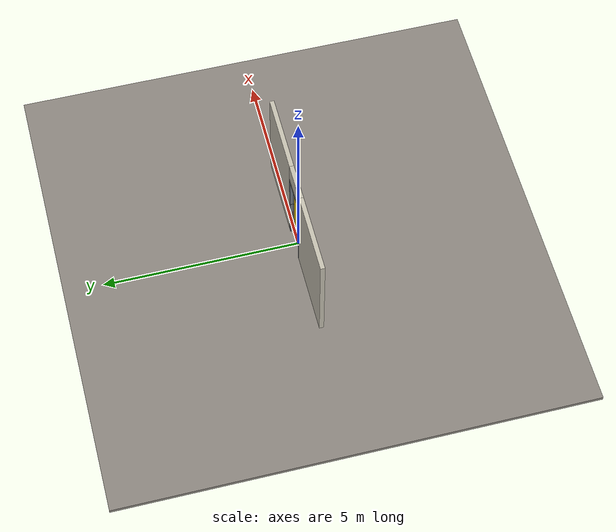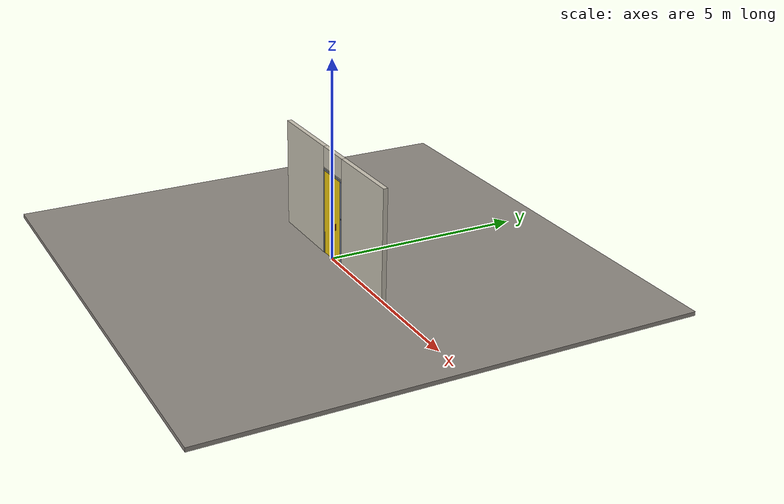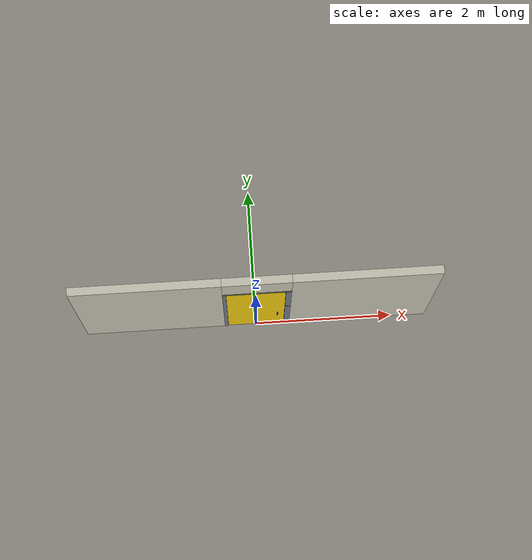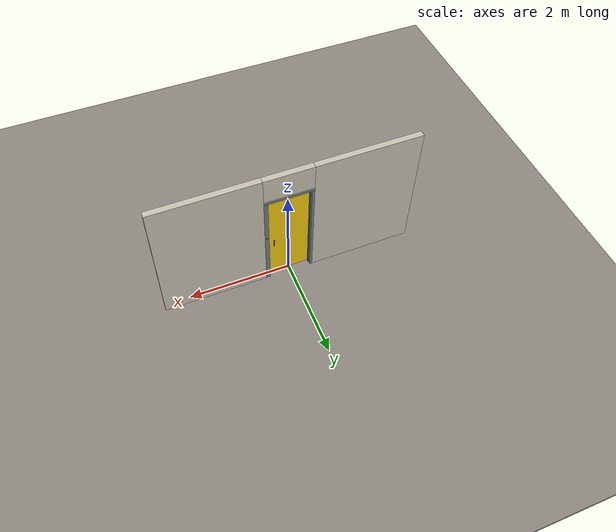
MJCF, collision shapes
<?xml version="1.0" ?>
<mujoco model="db0012_swing_single_minimal">
  <compiler angle="radian" meshdir="../../hardware" texturedir="../../textures" autolimits="true" inertiafromgeom="false"/>
  <option timestep="0.002" integrator="implicitfast" cone="elliptic" impratio="10" noslip_iterations="3">
    <flag multiccd="enable"/>
  </option>
  <size memory="16M"/>
  <default>
    <geom condim="4" solref="0.005 1" solimp="0.95 0.99 0.001"/>
    <joint solreflimit="0.005 1" solimplimit="0.95 0.99 0.001"/>
    <tendon solreflimit="0.005 1"/>
    <equality solref="0.002 1"/>
  </default>
  <visual>
    <headlight ambient="0.4 0.4 0.4" diffuse="0.7 0.7 0.7" specular="0.2 0.2 0.2"/>
    <quality shadowsize="4096"/>
    <map znear="0.01" zfar="60"/>
  </visual>
  <asset>
    <mesh name="pull_1e5d69a91a" file="pull_1e5d69a91a.obj"/>
    <material name="mat_floor" rgba="0.55 0.53 0.5 1" specular="0.2" shininess="0.15" reflectance="0"/>
    <material name="mat_wall" rgba="0.78 0.76 0.7 1" specular="0.2" shininess="0.1" reflectance="0"/>
    <material name="mat_leaf" rgba="0.95 0.8 0.05 1" specular="0.23" shininess="0.44" reflectance="0.02"/>
    <material name="mat_leaf_louver" rgba="0.807 0.68 0.043 1" specular="0.2" shininess="0.4" reflectance="0"/>
    <material name="mat_hinge" rgba="0.45 0.3 0.22 1" specular="0.5" shininess="0.1" reflectance="0.2"/>
    <material name="mat_op_stainless" rgba="0.75 0.76 0.77 1" specular="0.8" shininess="0.65" reflectance="0.4"/>
    <material name="mat_op_brass" rgba="0.85 0.66 0.3 1" specular="0.8" shininess="0.75" reflectance="0.4"/>
    <material name="mat_frame" rgba="0.45 0.48 0.52 1" specular="0.32" shininess="0.6" reflectance="0.08"/>
    <material name="mat_seal" rgba="0.1 0.1 0.1 1" specular="0.2" shininess="0.1" reflectance="0"/>
    <material name="mat_closer" rgba="0.22 0.17 0.13 1" specular="0.8" shininess="0.6" reflectance="0.4"/>
    <material name="mat_vent" rgba="0.8 0.81 0.83 1" specular="0.8" shininess="0.6" reflectance="0.4"/>
    <material name="mat_placard" rgba="0.95 0.75 0.05 1" specular="0.2" shininess="0.5" reflectance="0"/>
    <texture name="skybox" type="skybox" builtin="gradient" rgb1="0.6 0.7 0.85" rgb2="0.9 0.92 0.95" width="256" height="256"/>
  </asset>
  <worldbody>
    <light name="sun" pos="1.5 -2.5 4" dir="-0.3 0.5 -0.8" directional="true" diffuse="0.8 0.8 0.8" specular="0.3 0.3 0.3" castshadow="true"/>
    <light name="fill" pos="-1.5 2.5 3" dir="0.3 -0.5 -0.7" directional="true" diffuse="0.35 0.35 0.4" castshadow="false"/>
    <camera name="robot_view" pos="0 -2.590313 1.812087" xyaxes="1 0 0 0 0.26963 0.962964" fovy="52"/>
    <camera name="far_view" pos="0 2.685312 1.812087" xyaxes="-1 0 0 0 -0.26963 0.962964" fovy="52"/>
    <camera name="iso" pos="2.004737 -2.168262 2.234138" xyaxes="0.741536 0.670913 0 -0.242917 0.268487 0.932151" fovy="46"/>
    <camera name="detail_handle" pos="0.4815 -0.863 1.245" xyaxes="0.97561 0.219512 0 -0.070934 0.315262 0.94635" fovy="38"/>
    <geom name="floor" type="box" size="6 6 0.05" pos="0 0 -0.05" material="mat_floor" group="0" contype="1" conaffinity="1" friction="0.8 0.005 0.0001" density="2400"/>
    <geom name="wall_left" type="box" size="1.02025 0.0575 1.3735" pos="-1.47975 0.0475 1.3735" material="mat_wall" group="0" contype="1" conaffinity="1" friction="0.6 0.005 0.0001" density="800"/>
    <geom name="wall_right" type="box" size="1.00525 0.0575 1.3735" pos="1.49475 0.0475 1.3735" material="mat_wall" group="0" contype="1" conaffinity="1" friction="0.6 0.005 0.0001" density="800"/>
    <geom name="wall_header" type="box" size="0.4745 0.0575 0.26" pos="0.015 0.0475 2.487" material="mat_wall" group="0" contype="1" conaffinity="1" friction="0.6 0.005 0.0001" density="800"/>
    <geom name="jamb_hinge" type="box" size="0.025 0.0575 1.0735" pos="-0.4345 0.0475 1.0735" material="mat_frame" group="0" contype="1" conaffinity="1" friction="0.6 0.005 0.0001" density="300"/>
    <geom name="strike_1215_wall_n" type="box" size="0.04 0.041 0.01" pos="0.4495 0.064 1.215" material="mat_frame" group="0" contype="1" conaffinity="1" friction="0.6 0.005 0.0001" density="300"/>
    <geom name="strike_1215_wall_p" type="box" size="0.04 0.0085 0.01" pos="0.4495 -0.0015 1.215" material="mat_frame" group="0" contype="1" conaffinity="1" friction="0.6 0.005 0.0001" density="300"/>
    <geom name="strike_1215_back" type="box" size="0.019 0.008 0.01" pos="0.4705 0.015 1.215" material="mat_frame" group="0" contype="1" conaffinity="1" friction="0.6 0.005 0.0001" density="300"/>
    <geom name="jamb_strike_0" type="box" size="0.04 0.0575 0.6025" pos="0.4495 0.0475 0.6025" material="mat_frame" group="0" contype="1" conaffinity="1" friction="0.6 0.005 0.0001" density="300"/>
    <geom name="jamb_strike_1" type="box" size="0.04 0.0575 0.461" pos="0.4495 0.0475 1.686" material="mat_frame" group="0" contype="1" conaffinity="1" friction="0.6 0.005 0.0001" density="300"/>
    <geom name="jamb_head" type="box" size="0.4745 0.0575 0.025" pos="0.015 0.0475 2.172" material="mat_frame" group="0" contype="1" conaffinity="1" friction="0.6 0.005 0.0001" density="300"/>
    <geom name="head_stud" type="box" size="0.4745 0.0575 0.015" pos="0.015 0.0475 2.212" material="mat_wall" group="0" contype="1" conaffinity="1" friction="0.6 0.005 0.0001" density="500"/>
    <geom name="stop_hinge" type="box" size="0.0055 0.016 1.0735" pos="-0.404 0.0195 1.0735" material="mat_frame" group="0" contype="1" conaffinity="1" friction="0.6 0.005 0.0001" density="300"/>
    <geom name="stop_strike" type="box" size="0.0055 0.016 0.5965" pos="0.404 0.0195 0.5965" material="mat_frame" group="0" contype="1" conaffinity="1" friction="0.6 0.005 0.0001" density="300"/>
    <geom name="stop_strike_1" type="box" size="0.0055 0.016 0.455" pos="0.404 0.0195 1.692" material="mat_frame" group="0" contype="1" conaffinity="1" friction="0.6 0.005 0.0001" density="300"/>
    <geom name="stop_head" type="box" size="0.4095 0.016 0.0055" pos="0 0.0195 2.1415" material="mat_frame" group="0" contype="1" conaffinity="1" friction="0.6 0.005 0.0001" density="300"/>
    <site name="approach_point" pos="0 -1.5 0" quat="1 0 0 0" size="0.05" rgba="0.2 0.9 0.2 0.5" group="4"/>
    <site name="goal_point" pos="0 1.5 0" quat="1 0 0 0" size="0.05" rgba="0.2 0.9 0.2 0.5" group="4"/>
    <site name="door_plane_center" pos="0 0 1.0735" quat="1 0 0 0" size="0.02" rgba="0.2 0.9 0.2 0.5" group="4"/>
    <body name="leaf" pos="-0.4095 0 0">
      <inertial pos="0.412782 0 1.074792" mass="86.286493" quat="0.500281 0.500281 0.499718 -0.499718" diaginertia="4.788733382 32.406622096 37.188751639"/>
      <joint name="leaf_hinge" type="hinge" axis="0 0 -1" pos="0.003 -0.01 0" limited="true" range="0 1.745329" solreflimit="0.02 1" damping="10.168374" frictionloss="30.751442" stiffness="14.763213" springref="-3.207974" armature="0.02"/>
      <geom name="leaf_slab" type="box" size="0.4065 0.003 1.067" pos="0.4095 0 1.076" material="mat_leaf" group="0" contype="1" conaffinity="1" friction="0.45 0.005 0.0001" density="1"/>
      <geom name="leaf_pull_n" type="mesh" mesh="pull_1e5d69a91a" pos="0.711 -0.003 0.965" quat="0.707107 0.707107 0 0" material="mat_op_stainless" group="1" contype="0" conaffinity="0" density="3000"/>
      <geom name="leaf_pull_col_n" type="capsule" size="0.0095 0.08" pos="0.711 -0.063 0.965" material="mat_op_stainless" group="3" contype="1" conaffinity="1" rgba="0.8 0.3 0.3 0.25" friction="0.7 0.01 0.0001" density="3000"/>
      <geom name="leaf_pull_p" type="mesh" mesh="pull_1e5d69a91a" pos="0.711 0.003 0.965" quat="-0.707107 0.707107 0 0" material="mat_op_stainless" group="1" contype="0" conaffinity="0" density="3000"/>
      <geom name="leaf_pull_col_p" type="capsule" size="0.0095 0.08" pos="0.711 0.063 0.965" material="mat_op_stainless" group="3" contype="1" conaffinity="1" rgba="0.8 0.3 0.3 0.25" friction="0.7 0.01 0.0001" density="3000"/>
      <site name="leaf_pull_grip_n" pos="0.711 -0.063 0.965" quat="1 0 0 0" size="0.012" rgba="0.2 0.9 0.2 0.5" group="4"/>
      <site name="leaf_pull_grip_p" pos="0.711 0.063 0.965" quat="1 0 0 0" size="0.012" rgba="0.2 0.9 0.2 0.5" group="4"/>
      <site name="leaf_edge_mid" pos="0.816 0 1.067" quat="1 0 0 0" size="0.02" rgba="0.2 0.9 0.2 0.5" group="4"/>
    </body>
  </worldbody>
  <sensor>
    <jointpos name="leaf_hinge_pos" joint="leaf_hinge"/>
    <jointvel name="leaf_hinge_vel" joint="leaf_hinge"/>
  </sensor>
</mujoco>
